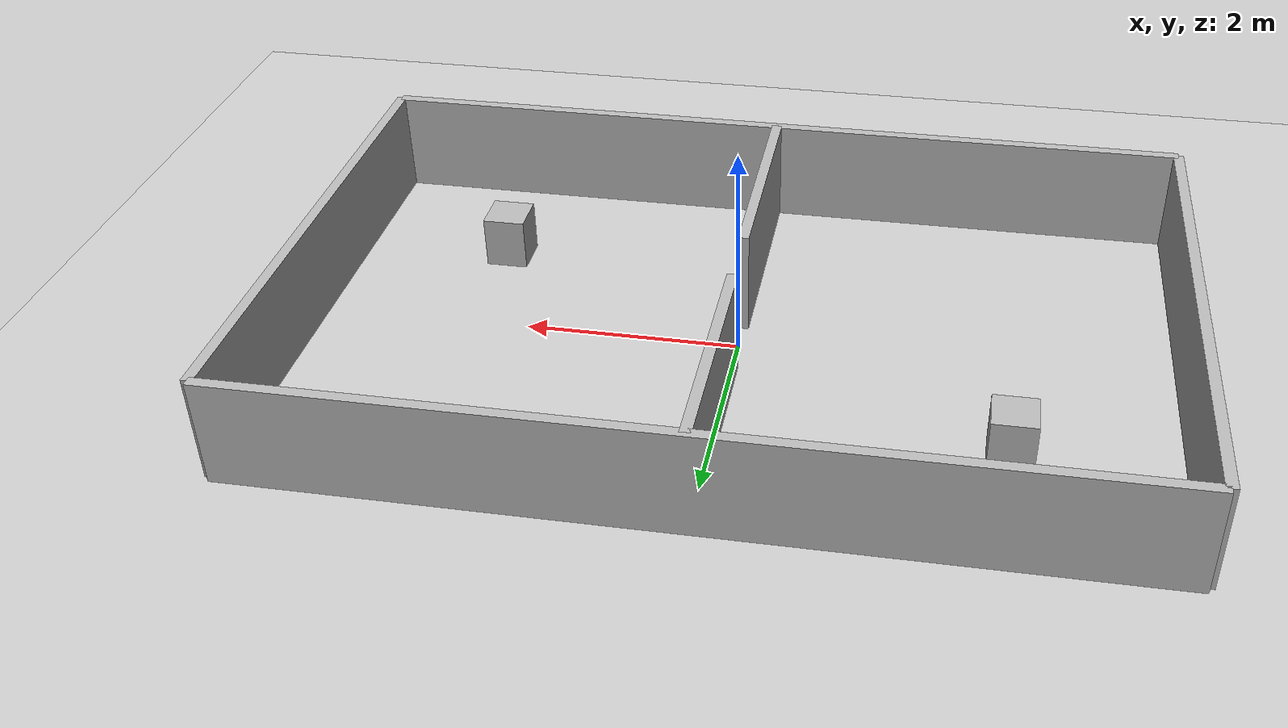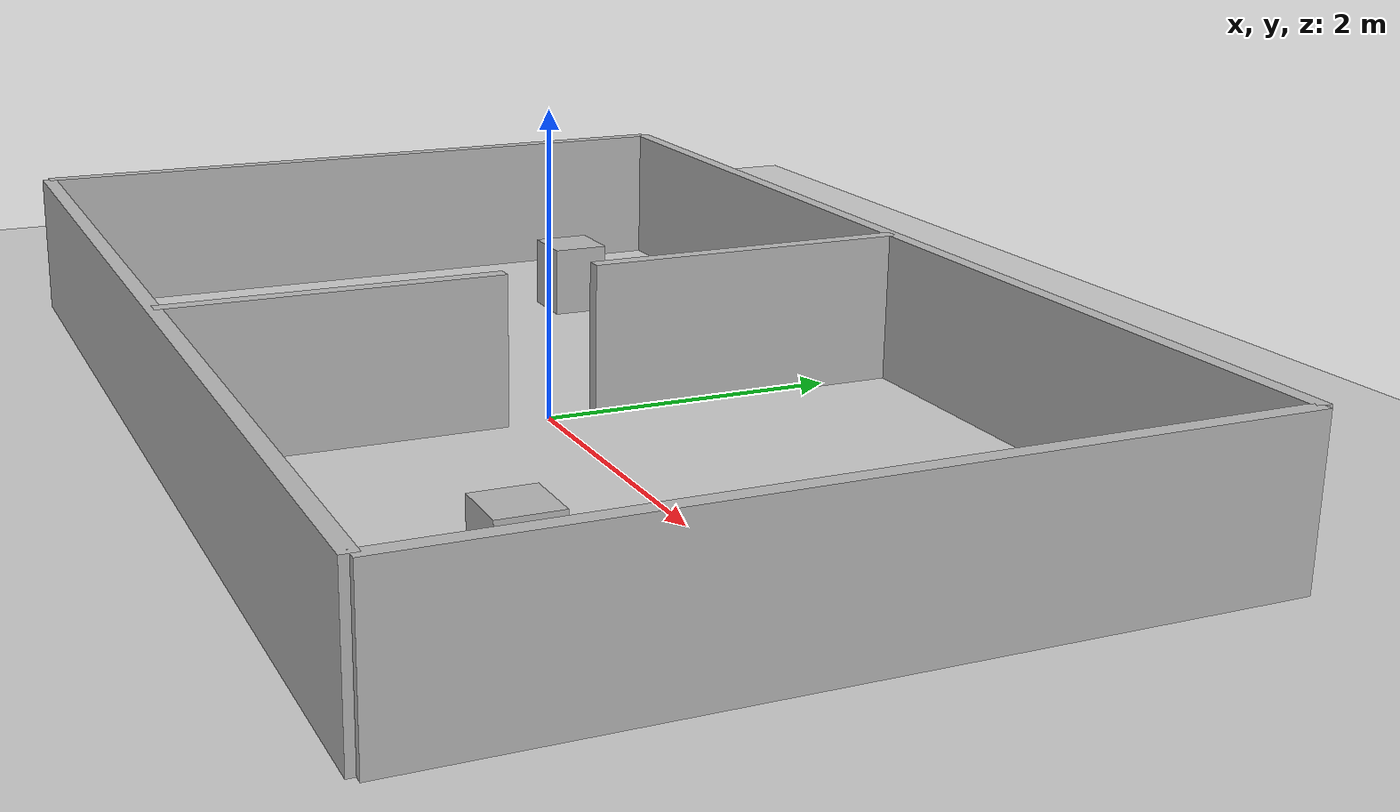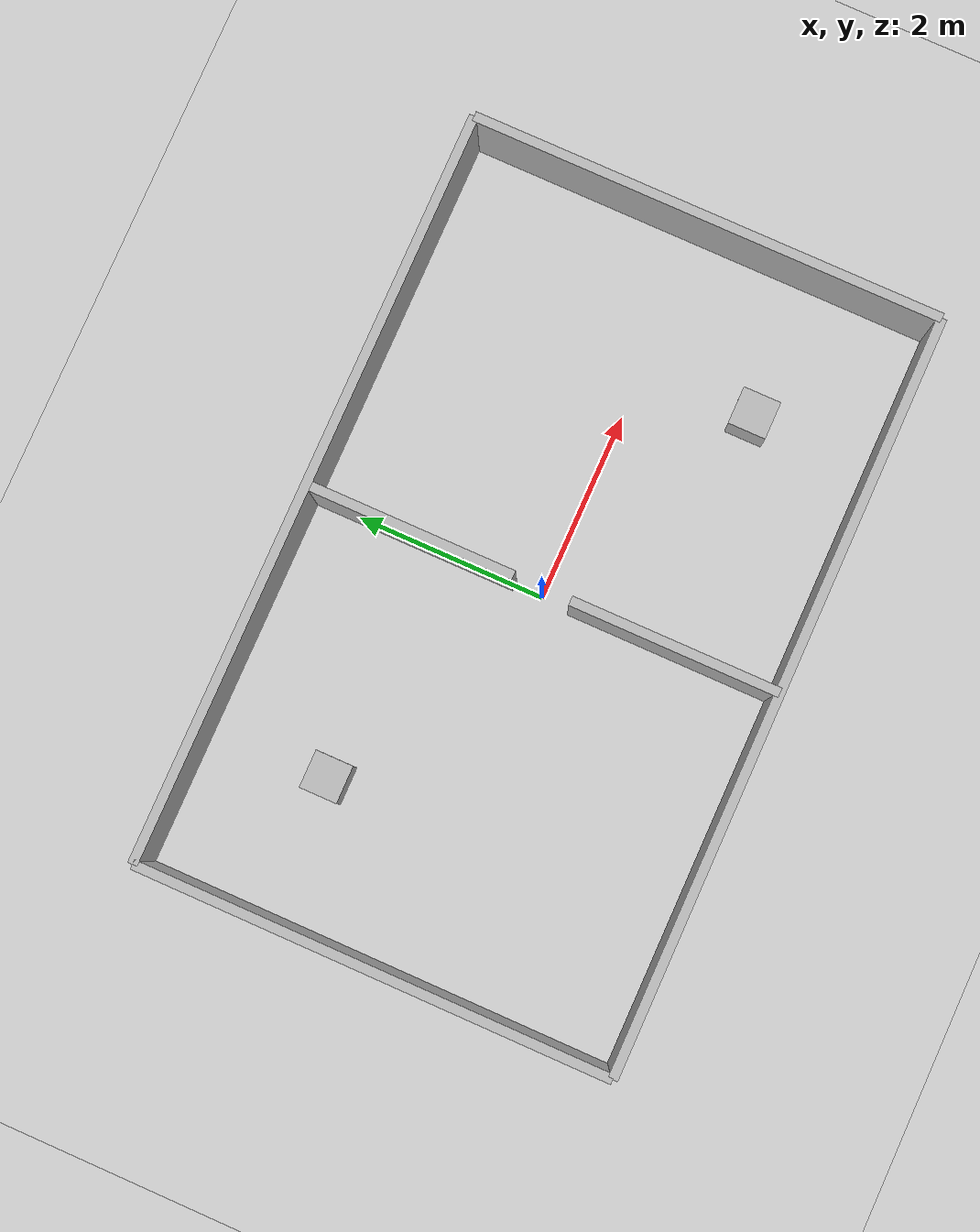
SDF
<?xml version="1.0"?>
<sdf version="1.9">
  <world name="two_room_test">

    <physics name="1ms" type="ignored">
      <max_step_size>0.001</max_step_size>
      <real_time_factor>1.0</real_time_factor>
    </physics>

    <plugin filename="gz-sim-physics-system" name="gz::sim::systems::Physics"/>
    <plugin filename="gz-sim-user-commands-system" name="gz::sim::systems::UserCommands"/>
    <plugin filename="gz-sim-scene-broadcaster-system" name="gz::sim::systems::SceneBroadcaster"/>
    <plugin filename="gz-sim-sensors-system" name="gz::sim::systems::Sensors">
      <render_engine>ogre2</render_engine>
    </plugin>
    <plugin filename="gz-sim-imu-system" name="gz::sim::systems::Imu"/>

    <plugin filename="gz-sim-contact-system" name="gz::sim::systems::Contact"/>

    <light type="directional" name="sun">
      <cast_shadows>true</cast_shadows>
      <pose>0 0 10 0 0 0</pose>
      <diffuse>0.8 0.8 0.8 1</diffuse>
      <direction>-0.5 0.1 -0.9</direction>
    </light>

    <model name="ground_plane">
      <static>true</static>
      <link name="link">
        <collision name="collision">
          <geometry><plane><normal>0 0 1</normal><size>20 20</size></plane></geometry>
        </collision>
        <visual name="visual">
          <geometry><plane><normal>0 0 1</normal><size>20 20</size></plane></geometry>
          <material><ambient>0.8 0.8 0.8 1</ambient><diffuse>0.8 0.8 0.8 1</diffuse></material>
        </visual>
      </link>
    </model>

    <!-- Outer boundary walls: 8m x 5m room -->
    <model name="wall_north">
      <static>true</static>
      <pose>0 2.5 0.5 0 0 0</pose>
      <link name="link">
        <collision name="collision"><geometry><box><size>8 0.1 1</size></box></geometry></collision>
        <visual name="visual"><geometry><box><size>8 0.1 1</size></box></geometry></visual>
      </link>
    </model>

    <model name="wall_south">
      <static>true</static>
      <pose>0 -2.5 0.5 0 0 0</pose>
      <link name="link">
        <collision name="collision"><geometry><box><size>8 0.1 1</size></box></geometry></collision>
        <visual name="visual"><geometry><box><size>8 0.1 1</size></box></geometry></visual>
      </link>
    </model>

    <model name="wall_east">
      <static>true</static>
      <pose>4 0 0.5 0 0 1.5708</pose>
      <link name="link">
        <collision name="collision"><geometry><box><size>5 0.1 1</size></box></geometry></collision>
        <visual name="visual"><geometry><box><size>5 0.1 1</size></box></geometry></visual>
      </link>
    </model>

    <model name="wall_west">
      <static>true</static>
      <pose>-4 0 0.5 0 0 1.5708</pose>
      <link name="link">
        <collision name="collision"><geometry><box><size>5 0.1 1</size></box></geometry></collision>
        <visual name="visual"><geometry><box><size>5 0.1 1</size></box></geometry></visual>
      </link>
    </model>

    <!-- Middle dividing wall with a gap (doorway) at y=0 for overlap between the two "rooms" -->
    <model name="divider_top">
      <static>true</static>
      <pose>0 1.4 0.5 0 0 0</pose>
      <link name="link">
        <collision name="collision"><geometry><box><size>0.1 2.2 1</size></box></geometry></collision>
        <visual name="visual"><geometry><box><size>0.1 2.2 1</size></box></geometry></visual>
      </link>
    </model>

    <model name="divider_bottom">
      <static>true</static>
      <pose>0 -1.4 0.5 0 0 0</pose>
      <link name="link">
        <collision name="collision"><geometry><box><size>0.1 2.2 1</size></box></geometry></collision>
        <visual name="visual"><geometry><box><size>0.1 2.2 1</size></box></geometry></visual>
      </link>
    </model>

    <!-- A few obstacles scattered in each half, for frontier/A* testing -->
    <model name="box_obs_1">
      <static>true</static>
      <pose>-2.5 1.2 0.25 0 0 0</pose>
      <link name="link">
        <collision name="collision"><geometry><box><size>0.4 0.4 0.5</size></box></geometry></collision>
        <visual name="visual"><geometry><box><size>0.4 0.4 0.5</size></box></geometry></visual>
      </link>
    </model>

    <model name="box_obs_2">
      <static>true</static>
      <pose>2.5 -1.2 0.25 0 0 0</pose>
      <link name="link">
        <collision name="collision"><geometry><box><size>0.4 0.4 0.5</size></box></geometry></collision>
        <visual name="visual"><geometry><box><size>0.4 0.4 0.5</size></box></geometry></visual>
      </link>
    </model>

  </world>
</sdf>
